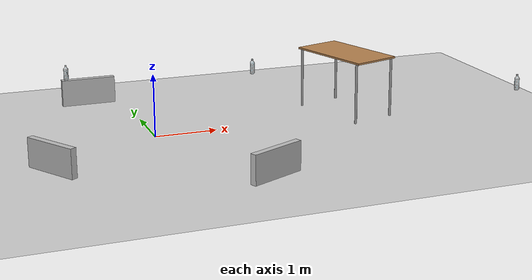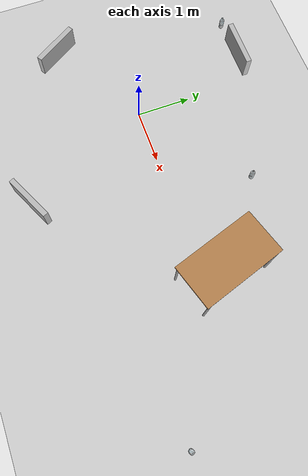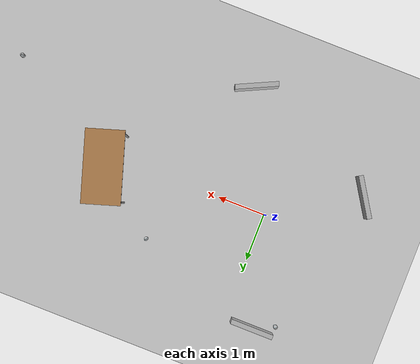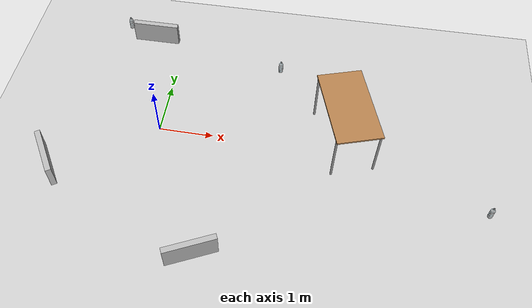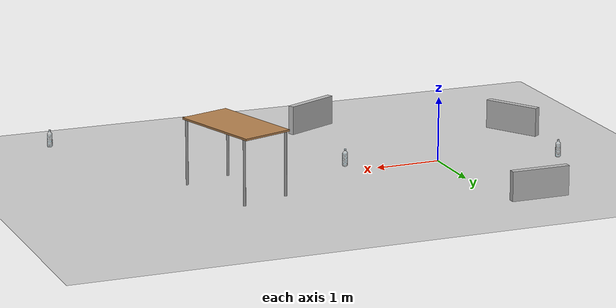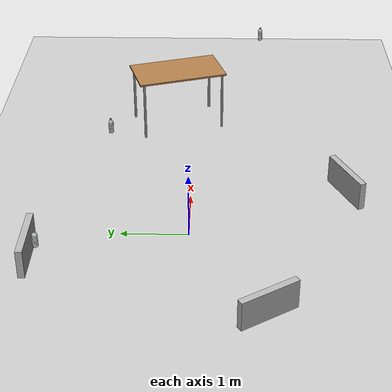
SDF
<sdf version="1.7">
 <world name="iml_test">
  <light name="sun" type="directional">
   <pose>0 0 10 0 -0 0</pose>
   <diffuse>0.8 0.8 0.8 1</diffuse>
   <specular>0.2 0.2 0.2 1</specular>
   <attenuation>
    <range>1000</range>
    <constant>0.9</constant>
    <linear>0.01</linear>
    <quadratic>0.001</quadratic>
   </attenuation>
   <direction>-0.5 0.1 -0.9</direction>
   <spot><inner_angle>0</inner_angle><outer_angle>0</outer_angle><falloff>0</falloff></spot>
  </light>
  <model name="ground_plane">
   <static>1</static>
   <link name="link9">
    <collision name="collision">
     <geometry><plane><normal>0 0 1</normal><size>100 100</size></plane></geometry>
     <surface>
      <contact><collide_bitmask>65535</collide_bitmask></contact>
      <friction><ode><mu>100</mu><mu2>50</mu2></ode></friction>
     </surface>
    </collision>
    <visual name="visual">
     <cast_shadows>0</cast_shadows>
     <geometry><plane><normal>0 0 1</normal><size>100 100</size></plane></geometry>
     <material>
      <script><uri>file://media/materials/scripts/gazebo.material</uri><name>Gazebo/Grey</name></script>
     </material>
    </visual>
   </link>
  </model>
  <gravity>0 0 -9.8</gravity>
  <magnetic_field>6e-06 2.3e-05 -4.2e-05</magnetic_field>
  <atmosphere type="adiabatic"/>
  <physics type="ode">
   <max_step_size>0.001</max_step_size>
   <real_time_factor>1</real_time_factor>
   <real_time_update_rate>1000</real_time_update_rate>
  </physics>
  <scene><ambient>0.4 0.4 0.4 1</ambient><background>0.7 0.7 0.7 1</background><shadows>1</shadows></scene>
  <audio><device>default</device></audio>
  <spherical_coordinates>
   <surface_model>EARTH_WGS84</surface_model>
   <latitude_deg>0</latitude_deg>
   <longitude_deg>0</longitude_deg>
   <elevation>0</elevation>
   <heading_deg>0</heading_deg>
  </spherical_coordinates>
  <model name="water_bottle2">
   <pose>-1.48768 2.01381 0.5 0 -0 0</pose>
   <static>1</static>
   <link name="link10">
    <visual name="visual">
     <geometry><mesh><scale>1 1 1</scale><uri>model://water_bottle2/model.dae</uri></mesh></geometry>
    </visual>
   </link>
  </model>
  <model name="bottles_block">
   <static>1</static>
   <link name="link11">
    <collision name="collision">
     <geometry>
      <mesh><scale>1 1 1</scale><uri>model://bottles_block/meshes/bottles_block.stl</uri></mesh>
     </geometry>
     <surface><friction><ode><mu>1.2</mu><mu2>1.2</mu2></ode></friction></surface>
    </collision>
    <visual name="visual">
     <geometry>
      <mesh><scale>1 1 1</scale><uri>model://bottles_block/meshes/bottles_block.dae</uri></mesh>
     </geometry>
    </visual>
   </link>
   <pose>-1.75993 -1.08198 -0 0 0 -1.00678</pose>
  </model>
  <model name="water_bottles_block_1">
   <static>1</static>
   <link name="link12">
    <collision name="collision">
     <geometry>
      <mesh><scale>1 1 1</scale><uri>model://water_bottles_block_1/meshes/water_bottles_block_1.stl</uri></mesh>
     </geometry>
     <surface><friction><ode><mu>1.2</mu><mu2>1.2</mu2></ode></friction></surface>
    </collision>
    <visual name="visual">
     <geometry>
      <mesh><scale>1 1 1</scale><uri>model://water_bottles_block_1/meshes/water_bottles_block_1.dae</uri></mesh>
     </geometry>
    </visual>
   </link>
   <pose>-0.594439 2.25699 0 0 -0 0</pose>
  </model>
  <model name="water_bottles_block_2">
   <static>1</static>
   <link name="link13">
    <collision name="collision">
     <geometry>
      <mesh><scale>1 1 1</scale><uri>model://water_bottles_block_2/meshes/water_bottles_block_2.stl</uri></mesh>
     </geometry>
     <surface><friction><ode><mu>1.2</mu><mu2>1.2</mu2></ode></friction></surface>
    </collision>
    <visual name="visual">
     <geometry>
      <mesh><scale>1 1 1</scale><uri>model://water_bottles_block_2/meshes/water_bottles_block_2.dae</uri></mesh>
     </geometry>
    </visual>
   </link>
   <pose>1.11363 -2.40115 0 0 -0 0.442509</pose>
  </model>
  <model name="table">
   <static>1</static>
   <link name="link14">
    <collision name="surface1">
     <pose>0 0 1 0 -0 0</pose>
     <geometry><box><size>1.5 0.8 0.03</size></box></geometry>
     <surface><friction><ode><mu>0.6</mu><mu2>0.6</mu2></ode></friction></surface>
    </collision>
    <visual name="visual1">
     <pose>0 0 1 0 -0 0</pose>
     <geometry><box><size>1.5 0.8 0.03</size></box></geometry>
     <material>
      <script><uri>file://media/materials/scripts/gazebo.material</uri><name>Gazebo/Wood</name></script>
     </material>
    </visual>
    <collision name="front_left_leg">
     <pose>0.68 0.38 0.5 0 -0 0</pose>
     <geometry><cylinder><radius>0.02</radius><length>1</length></cylinder></geometry>
    </collision>
    <visual name="front_left_leg1">
     <pose>0.68 0.38 0.5 0 -0 0</pose>
     <geometry><cylinder><radius>0.02</radius><length>1</length></cylinder></geometry>
     <material>
      <script><uri>file://media/materials/scripts/gazebo.material</uri><name>Gazebo/Grey</name></script>
     </material>
    </visual>
    <collision name="front_right_leg">
     <pose>0.68 -0.38 0.5 0 -0 0</pose>
     <geometry><cylinder><radius>0.02</radius><length>1</length></cylinder></geometry>
    </collision>
    <visual name="front_right_leg1">
     <pose>0.68 -0.38 0.5 0 -0 0</pose>
     <geometry><cylinder><radius>0.02</radius><length>1</length></cylinder></geometry>
     <material>
      <script><uri>file://media/materials/scripts/gazebo.material</uri><name>Gazebo/Grey</name></script>
     </material>
    </visual>
    <collision name="back_right_leg">
     <pose>-0.68 -0.38 0.5 0 -0 0</pose>
     <geometry><cylinder><radius>0.02</radius><length>1</length></cylinder></geometry>
    </collision>
    <visual name="back_right_leg1">
     <pose>-0.68 -0.38 0.5 0 -0 0</pose>
     <geometry><cylinder><radius>0.02</radius><length>1</length></cylinder></geometry>
     <material>
      <script><uri>file://media/materials/scripts/gazebo.material</uri><name>Gazebo/Grey</name></script>
     </material>
    </visual>
    <collision name="back_left_leg1">
     <pose>-0.68 0.38 0.5 0 -0 0</pose>
     <geometry><cylinder><radius>0.02</radius><length>1</length></cylinder></geometry>
    </collision>
    <visual name="back_left_leg2">
     <pose>-0.68 0.38 0.5 0 -0 0</pose>
     <geometry><cylinder><radius>0.02</radius><length>1</length></cylinder></geometry>
     <material>
      <script><uri>file://media/materials/scripts/gazebo.material</uri><name>Gazebo/Grey</name></script>
     </material>
    </visual>
   </link>
   <pose>3.36384 0.288042 0 0 0 -1.26148</pose>
  </model>
  <model name="water_bottle2_0">
   <pose>1.57906 1.31021 0.5 0 -0 0</pose>
   <static>1</static>
   <link name="link16">
    <visual name="visual">
     <geometry><mesh><scale>1 1 1</scale><uri>model://water_bottle2/model.dae</uri></mesh></geometry>
    </visual>
   </link>
  </model>
  <model name="water_bottle2_1">
   <pose>5.24172 -1.22314 0.5 0 -0 0</pose>
   <static>1</static>
   <link name="link17">
    <visual name="visual">
     <geometry><mesh><scale>1 1 1</scale><uri>model://water_bottle2/model.dae</uri></mesh></geometry>
    </visual>
   </link>
  </model>
  <light name="user_point_light_0" type="point">
   <pose>-9.84949 -9.56432 1 0 -0 0</pose>
   <diffuse>0.5 0.5 0.5 1</diffuse>
   <specular>0.1 0.1 0.1 1</specular>
   <attenuation>
    <range>20</range>
    <constant>0.5</constant>
    <linear>0.01</linear>
    <quadratic>0.001</quadratic>
   </attenuation>
   <cast_shadows>0</cast_shadows>
   <direction>0 0 -1</direction>
  </light>
  <light name="user_point_light_1" type="point">
   <pose>-9.24965 -8.87833 1 0 -0 0</pose>
   <diffuse>0.5 0.5 0.5 1</diffuse>
   <specular>0.1 0.1 0.1 1</specular>
   <attenuation>
    <range>20</range>
    <constant>0.5</constant>
    <linear>0.01</linear>
    <quadratic>0.001</quadratic>
   </attenuation>
   <cast_shadows>0</cast_shadows>
   <direction>0 0 -1</direction>
  </light>
  <light name="user_point_light_2" type="point">
   <pose>-9.5264 9.38259 1 0 -0 0</pose>
   <diffuse>0.5 0.5 0.5 1</diffuse>
   <specular>0.1 0.1 0.1 1</specular>
   <attenuation>
    <range>20</range>
    <constant>0.5</constant>
    <linear>0.01</linear>
    <quadratic>0.001</quadratic>
   </attenuation>
   <cast_shadows>0</cast_shadows>
   <direction>0 0 -1</direction>
  </light>
  <light name="user_point_light_3" type="point">
   <pose>9.47051 9.16746 1 0 -0 0</pose>
   <diffuse>0.5 0.5 0.5 1</diffuse>
   <specular>0.1 0.1 0.1 1</specular>
   <attenuation>
    <range>20</range>
    <constant>0.5</constant>
    <linear>0.01</linear>
    <quadratic>0.001</quadratic>
   </attenuation>
   <cast_shadows>0</cast_shadows>
   <direction>0 0 -1</direction>
  </light>
  <light name="user_point_light_4" type="point">
   <pose>9.28985 -9.22722 1 0 -0 0</pose>
   <diffuse>0.5 0.5 0.5 1</diffuse>
   <specular>0.1 0.1 0.1 1</specular>
   <attenuation>
    <range>20</range>
    <constant>0.5</constant>
    <linear>0.01</linear>
    <quadratic>0.001</quadratic>
   </attenuation>
   <cast_shadows>0</cast_shadows>
   <direction>0 0 -1</direction>
  </light>
 </world>
</sdf>
